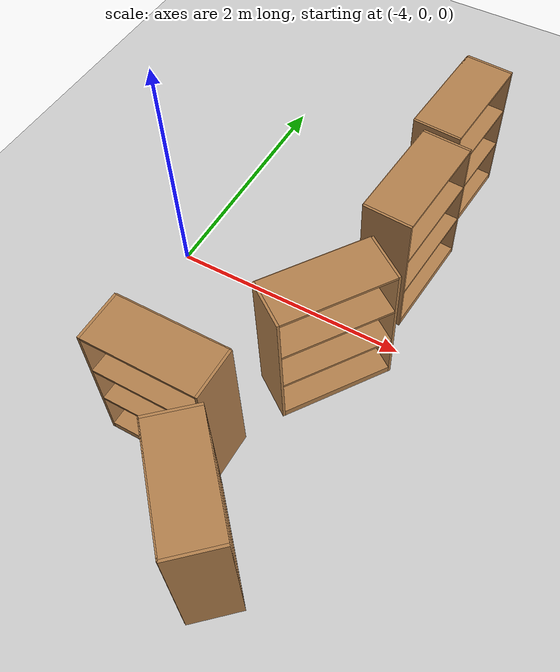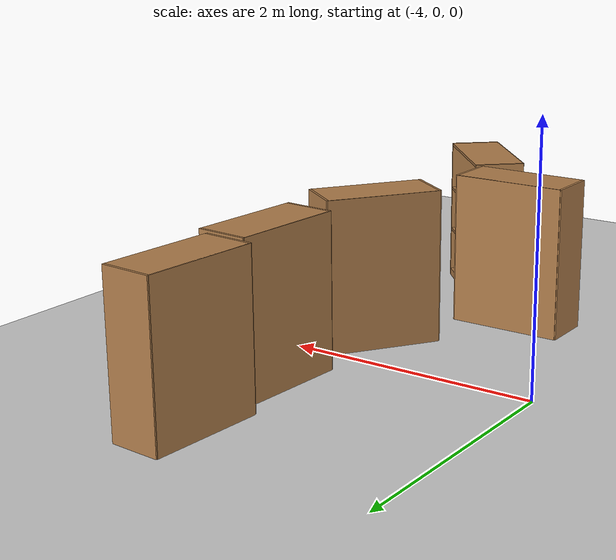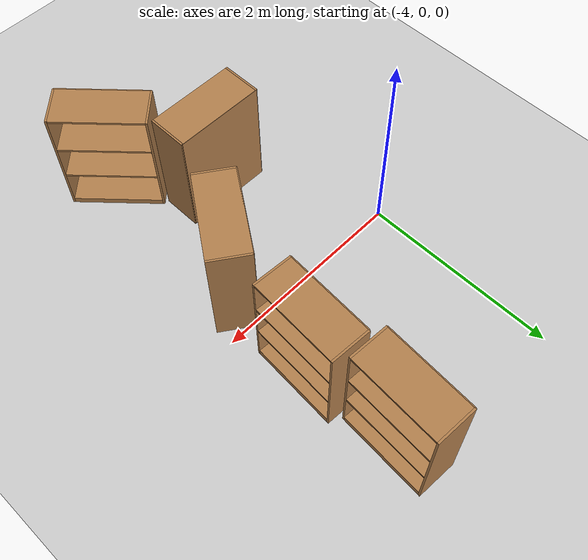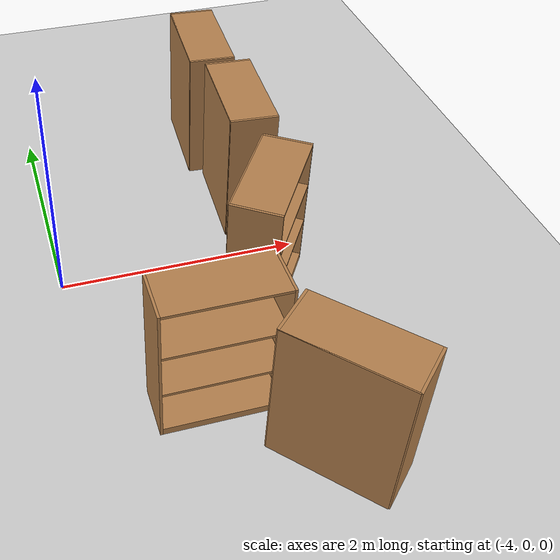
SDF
<sdf version="1.7">
 <world name="default">
  <model name="ground_plane">
   <static>1</static>
   <link name="link">
    <collision name="collision">
     <geometry><plane><normal>0 0 1</normal><size>100 100</size></plane></geometry>
     <surface>
      <contact><collide_bitmask>65535</collide_bitmask></contact>
      <friction><ode><mu>100</mu><mu2>50</mu2></ode></friction>
     </surface>
    </collision>
    <visual name="visual">
     <cast_shadows>0</cast_shadows>
     <geometry><plane><normal>0 0 1</normal><size>100 100</size></plane></geometry>
     <material>
      <script><uri>file://media/materials/scripts/gazebo.material</uri><name>Gazebo/Grey</name></script>
     </material>
    </visual>
   </link>
  </model>
  <model name="bookshelf_3">
   <static>1</static>
   <link name="link">
    <inertial><mass>1</mass></inertial>
    <collision name="back">
     <pose>0 0.005 0.6 0 -0 0</pose>
     <geometry><box><size>0.9 0.01 1.2</size></box></geometry>
    </collision>
    <visual name="visual1">
     <pose>0 0.005 0.6 0 -0 0</pose>
     <geometry><box><size>0.9 0.01 1.2</size></box></geometry>
     <material>
      <script><uri>file://media/materials/scripts/gazebo.material</uri><name>Gazebo/Wood</name></script>
     </material>
    </visual>
    <collision name="left_side">
     <pose>0.45 -0.195 0.6 0 -0 0</pose>
     <geometry><box><size>0.02 0.4 1.2</size></box></geometry>
    </collision>
    <visual name="visual2">
     <pose>0.45 -0.195 0.6 0 -0 0</pose>
     <geometry><box><size>0.02 0.4 1.2</size></box></geometry>
     <material>
      <script><uri>file://media/materials/scripts/gazebo.material</uri><name>Gazebo/Wood</name></script>
     </material>
    </visual>
    <collision name="right_side">
     <pose>-0.45 -0.195 0.6 0 -0 0</pose>
     <geometry><box><size>0.02 0.4 1.2</size></box></geometry>
    </collision>
    <visual name="visual3">
     <pose>-0.45 -0.195 0.6 0 -0 0</pose>
     <geometry><box><size>0.02 0.4 1.2</size></box></geometry>
     <material>
      <script><uri>file://media/materials/scripts/gazebo.material</uri><name>Gazebo/Wood</name></script>
     </material>
    </visual>
    <collision name="bottom">
     <pose>0 -0.195 0.03 0 -0 0</pose>
     <geometry><box><size>0.88 0.4 0.06</size></box></geometry>
    </collision>
    <visual name="visual4">
     <pose>0 -0.195 0.03 0 -0 0</pose>
     <geometry><box><size>0.88 0.4 0.06</size></box></geometry>
     <material>
      <script><uri>file://media/materials/scripts/gazebo.material</uri><name>Gazebo/Wood</name></script>
     </material>
    </visual>
    <collision name="top">
     <pose>0 -0.195 1.19 0 -0 0</pose>
     <geometry><box><size>0.88 0.4 0.02</size></box></geometry>
    </collision>
    <visual name="visual5">
     <pose>0 -0.195 1.19 0 -0 0</pose>
     <geometry><box><size>0.88 0.4 0.02</size></box></geometry>
     <material>
      <script><uri>file://media/materials/scripts/gazebo.material</uri><name>Gazebo/Wood</name></script>
     </material>
    </visual>
    <collision name="low_shelf">
     <pose>0 -0.195 0.43 0 -0 0</pose>
     <geometry><box><size>0.88 0.4 0.02</size></box></geometry>
    </collision>
    <visual name="visual6">
     <pose>0 -0.195 0.43 0 -0 0</pose>
     <geometry><box><size>0.88 0.4 0.02</size></box></geometry>
     <material>
      <script><uri>file://media/materials/scripts/gazebo.material</uri><name>Gazebo/Wood</name></script>
     </material>
    </visual>
    <collision name="high_shelf">
     <pose>0 -0.195 0.8 0 -0 0</pose>
     <geometry><box><size>0.88 0.4 0.02</size></box></geometry>
    </collision>
    <visual name="visual7">
     <pose>0 -0.195 0.8 0 -0 0</pose>
     <geometry><box><size>0.88 0.4 0.02</size></box></geometry>
     <material>
      <script><uri>file://media/materials/scripts/gazebo.material</uri><name>Gazebo/Wood</name></script>
     </material>
    </visual>
   </link>
   <pose>-2.52593 1.69276 0 0 -0 1.50582</pose>
  </model>
  <model name="bookshelf_4">
   <static>1</static>
   <link name="link">
    <inertial><mass>1</mass></inertial>
    <collision name="back">
     <pose>0 0.005 0.6 0 -0 0</pose>
     <geometry><box><size>0.9 0.01 1.2</size></box></geometry>
    </collision>
    <visual name="visual1">
     <pose>0 0.005 0.6 0 -0 0</pose>
     <geometry><box><size>0.9 0.01 1.2</size></box></geometry>
     <material>
      <script><uri>file://media/materials/scripts/gazebo.material</uri><name>Gazebo/Wood</name></script>
     </material>
    </visual>
    <collision name="left_side">
     <pose>0.45 -0.195 0.6 0 -0 0</pose>
     <geometry><box><size>0.02 0.4 1.2</size></box></geometry>
    </collision>
    <visual name="visual2">
     <pose>0.45 -0.195 0.6 0 -0 0</pose>
     <geometry><box><size>0.02 0.4 1.2</size></box></geometry>
     <material>
      <script><uri>file://media/materials/scripts/gazebo.material</uri><name>Gazebo/Wood</name></script>
     </material>
    </visual>
    <collision name="right_side">
     <pose>-0.45 -0.195 0.6 0 -0 0</pose>
     <geometry><box><size>0.02 0.4 1.2</size></box></geometry>
    </collision>
    <visual name="visual3">
     <pose>-0.45 -0.195 0.6 0 -0 0</pose>
     <geometry><box><size>0.02 0.4 1.2</size></box></geometry>
     <material>
      <script><uri>file://media/materials/scripts/gazebo.material</uri><name>Gazebo/Wood</name></script>
     </material>
    </visual>
    <collision name="bottom">
     <pose>0 -0.195 0.03 0 -0 0</pose>
     <geometry><box><size>0.88 0.4 0.06</size></box></geometry>
    </collision>
    <visual name="visual4">
     <pose>0 -0.195 0.03 0 -0 0</pose>
     <geometry><box><size>0.88 0.4 0.06</size></box></geometry>
     <material>
      <script><uri>file://media/materials/scripts/gazebo.material</uri><name>Gazebo/Wood</name></script>
     </material>
    </visual>
    <collision name="top">
     <pose>0 -0.195 1.19 0 -0 0</pose>
     <geometry><box><size>0.88 0.4 0.02</size></box></geometry>
    </collision>
    <visual name="visual5">
     <pose>0 -0.195 1.19 0 -0 0</pose>
     <geometry><box><size>0.88 0.4 0.02</size></box></geometry>
     <material>
      <script><uri>file://media/materials/scripts/gazebo.material</uri><name>Gazebo/Wood</name></script>
     </material>
    </visual>
    <collision name="low_shelf">
     <pose>0 -0.195 0.43 0 -0 0</pose>
     <geometry><box><size>0.88 0.4 0.02</size></box></geometry>
    </collision>
    <visual name="visual6">
     <pose>0 -0.195 0.43 0 -0 0</pose>
     <geometry><box><size>0.88 0.4 0.02</size></box></geometry>
     <material>
      <script><uri>file://media/materials/scripts/gazebo.material</uri><name>Gazebo/Wood</name></script>
     </material>
    </visual>
    <collision name="high_shelf">
     <pose>0 -0.195 0.8 0 -0 0</pose>
     <geometry><box><size>0.88 0.4 0.02</size></box></geometry>
    </collision>
    <visual name="visual7">
     <pose>0 -0.195 0.8 0 -0 0</pose>
     <geometry><box><size>0.88 0.4 0.02</size></box></geometry>
     <material>
      <script><uri>file://media/materials/scripts/gazebo.material</uri><name>Gazebo/Wood</name></script>
     </material>
    </visual>
   </link>
   <pose>-2.46567 0.720951 0 0 -0 1.50711</pose>
  </model>
  <model name="bookshelf_5">
   <static>1</static>
   <link name="link">
    <inertial><mass>1</mass></inertial>
    <collision name="back">
     <pose>0 0.005 0.6 0 -0 0</pose>
     <geometry><box><size>0.9 0.01 1.2</size></box></geometry>
    </collision>
    <visual name="visual1">
     <pose>0 0.005 0.6 0 -0 0</pose>
     <geometry><box><size>0.9 0.01 1.2</size></box></geometry>
     <material>
      <script><uri>file://media/materials/scripts/gazebo.material</uri><name>Gazebo/Wood</name></script>
     </material>
    </visual>
    <collision name="left_side">
     <pose>0.45 -0.195 0.6 0 -0 0</pose>
     <geometry><box><size>0.02 0.4 1.2</size></box></geometry>
    </collision>
    <visual name="visual2">
     <pose>0.45 -0.195 0.6 0 -0 0</pose>
     <geometry><box><size>0.02 0.4 1.2</size></box></geometry>
     <material>
      <script><uri>file://media/materials/scripts/gazebo.material</uri><name>Gazebo/Wood</name></script>
     </material>
    </visual>
    <collision name="right_side">
     <pose>-0.45 -0.195 0.6 0 -0 0</pose>
     <geometry><box><size>0.02 0.4 1.2</size></box></geometry>
    </collision>
    <visual name="visual3">
     <pose>-0.45 -0.195 0.6 0 -0 0</pose>
     <geometry><box><size>0.02 0.4 1.2</size></box></geometry>
     <material>
      <script><uri>file://media/materials/scripts/gazebo.material</uri><name>Gazebo/Wood</name></script>
     </material>
    </visual>
    <collision name="bottom">
     <pose>0 -0.195 0.03 0 -0 0</pose>
     <geometry><box><size>0.88 0.4 0.06</size></box></geometry>
    </collision>
    <visual name="visual4">
     <pose>0 -0.195 0.03 0 -0 0</pose>
     <geometry><box><size>0.88 0.4 0.06</size></box></geometry>
     <material>
      <script><uri>file://media/materials/scripts/gazebo.material</uri><name>Gazebo/Wood</name></script>
     </material>
    </visual>
    <collision name="top">
     <pose>0 -0.195 1.19 0 -0 0</pose>
     <geometry><box><size>0.88 0.4 0.02</size></box></geometry>
    </collision>
    <visual name="visual5">
     <pose>0 -0.195 1.19 0 -0 0</pose>
     <geometry><box><size>0.88 0.4 0.02</size></box></geometry>
     <material>
      <script><uri>file://media/materials/scripts/gazebo.material</uri><name>Gazebo/Wood</name></script>
     </material>
    </visual>
    <collision name="low_shelf">
     <pose>0 -0.195 0.43 0 -0 0</pose>
     <geometry><box><size>0.88 0.4 0.02</size></box></geometry>
    </collision>
    <visual name="visual6">
     <pose>0 -0.195 0.43 0 -0 0</pose>
     <geometry><box><size>0.88 0.4 0.02</size></box></geometry>
     <material>
      <script><uri>file://media/materials/scripts/gazebo.material</uri><name>Gazebo/Wood</name></script>
     </material>
    </visual>
    <collision name="high_shelf">
     <pose>0 -0.195 0.8 0 -0 0</pose>
     <geometry><box><size>0.88 0.4 0.02</size></box></geometry>
    </collision>
    <visual name="visual7">
     <pose>0 -0.195 0.8 0 -0 0</pose>
     <geometry><box><size>0.88 0.4 0.02</size></box></geometry>
     <material>
      <script><uri>file://media/materials/scripts/gazebo.material</uri><name>Gazebo/Wood</name></script>
     </material>
    </visual>
   </link>
   <pose>-2.56119 -0.330617 0 0 -0 0.965045</pose>
  </model>
  <model name="bookshelf_6">
   <static>1</static>
   <link name="link">
    <inertial><mass>1</mass></inertial>
    <collision name="back">
     <pose>0 0.005 0.6 0 -0 0</pose>
     <geometry><box><size>0.9 0.01 1.2</size></box></geometry>
    </collision>
    <visual name="visual1">
     <pose>0 0.005 0.6 0 -0 0</pose>
     <geometry><box><size>0.9 0.01 1.2</size></box></geometry>
     <material>
      <script><uri>file://media/materials/scripts/gazebo.material</uri><name>Gazebo/Wood</name></script>
     </material>
    </visual>
    <collision name="left_side">
     <pose>0.45 -0.195 0.6 0 -0 0</pose>
     <geometry><box><size>0.02 0.4 1.2</size></box></geometry>
    </collision>
    <visual name="visual2">
     <pose>0.45 -0.195 0.6 0 -0 0</pose>
     <geometry><box><size>0.02 0.4 1.2</size></box></geometry>
     <material>
      <script><uri>file://media/materials/scripts/gazebo.material</uri><name>Gazebo/Wood</name></script>
     </material>
    </visual>
    <collision name="right_side">
     <pose>-0.45 -0.195 0.6 0 -0 0</pose>
     <geometry><box><size>0.02 0.4 1.2</size></box></geometry>
    </collision>
    <visual name="visual3">
     <pose>-0.45 -0.195 0.6 0 -0 0</pose>
     <geometry><box><size>0.02 0.4 1.2</size></box></geometry>
     <material>
      <script><uri>file://media/materials/scripts/gazebo.material</uri><name>Gazebo/Wood</name></script>
     </material>
    </visual>
    <collision name="bottom">
     <pose>0 -0.195 0.03 0 -0 0</pose>
     <geometry><box><size>0.88 0.4 0.06</size></box></geometry>
    </collision>
    <visual name="visual4">
     <pose>0 -0.195 0.03 0 -0 0</pose>
     <geometry><box><size>0.88 0.4 0.06</size></box></geometry>
     <material>
      <script><uri>file://media/materials/scripts/gazebo.material</uri><name>Gazebo/Wood</name></script>
     </material>
    </visual>
    <collision name="top">
     <pose>0 -0.195 1.19 0 -0 0</pose>
     <geometry><box><size>0.88 0.4 0.02</size></box></geometry>
    </collision>
    <visual name="visual5">
     <pose>0 -0.195 1.19 0 -0 0</pose>
     <geometry><box><size>0.88 0.4 0.02</size></box></geometry>
     <material>
      <script><uri>file://media/materials/scripts/gazebo.material</uri><name>Gazebo/Wood</name></script>
     </material>
    </visual>
    <collision name="low_shelf">
     <pose>0 -0.195 0.43 0 -0 0</pose>
     <geometry><box><size>0.88 0.4 0.02</size></box></geometry>
    </collision>
    <visual name="visual6">
     <pose>0 -0.195 0.43 0 -0 0</pose>
     <geometry><box><size>0.88 0.4 0.02</size></box></geometry>
     <material>
      <script><uri>file://media/materials/scripts/gazebo.material</uri><name>Gazebo/Wood</name></script>
     </material>
    </visual>
    <collision name="high_shelf">
     <pose>0 -0.195 0.8 0 -0 0</pose>
     <geometry><box><size>0.88 0.4 0.02</size></box></geometry>
    </collision>
    <visual name="visual7">
     <pose>0 -0.195 0.8 0 -0 0</pose>
     <geometry><box><size>0.88 0.4 0.02</size></box></geometry>
     <material>
      <script><uri>file://media/materials/scripts/gazebo.material</uri><name>Gazebo/Wood</name></script>
     </material>
    </visual>
   </link>
   <pose>-2.58274 -2.22208 0 0 -0 2.31465</pose>
  </model>
  <model name="bookshelf_7">
   <static>1</static>
   <link name="link">
    <inertial><mass>1</mass></inertial>
    <collision name="back">
     <pose>0 0.005 0.6 0 -0 0</pose>
     <geometry><box><size>0.9 0.01 1.2</size></box></geometry>
    </collision>
    <visual name="visual1">
     <pose>0 0.005 0.6 0 -0 0</pose>
     <geometry><box><size>0.9 0.01 1.2</size></box></geometry>
     <material>
      <script><uri>file://media/materials/scripts/gazebo.material</uri><name>Gazebo/Wood</name></script>
     </material>
    </visual>
    <collision name="left_side">
     <pose>0.45 -0.195 0.6 0 -0 0</pose>
     <geometry><box><size>0.02 0.4 1.2</size></box></geometry>
    </collision>
    <visual name="visual2">
     <pose>0.45 -0.195 0.6 0 -0 0</pose>
     <geometry><box><size>0.02 0.4 1.2</size></box></geometry>
     <material>
      <script><uri>file://media/materials/scripts/gazebo.material</uri><name>Gazebo/Wood</name></script>
     </material>
    </visual>
    <collision name="right_side">
     <pose>-0.45 -0.195 0.6 0 -0 0</pose>
     <geometry><box><size>0.02 0.4 1.2</size></box></geometry>
    </collision>
    <visual name="visual3">
     <pose>-0.45 -0.195 0.6 0 -0 0</pose>
     <geometry><box><size>0.02 0.4 1.2</size></box></geometry>
     <material>
      <script><uri>file://media/materials/scripts/gazebo.material</uri><name>Gazebo/Wood</name></script>
     </material>
    </visual>
    <collision name="bottom">
     <pose>0 -0.195 0.03 0 -0 0</pose>
     <geometry><box><size>0.88 0.4 0.06</size></box></geometry>
    </collision>
    <visual name="visual4">
     <pose>0 -0.195 0.03 0 -0 0</pose>
     <geometry><box><size>0.88 0.4 0.06</size></box></geometry>
     <material>
      <script><uri>file://media/materials/scripts/gazebo.material</uri><name>Gazebo/Wood</name></script>
     </material>
    </visual>
    <collision name="top">
     <pose>0 -0.195 1.19 0 -0 0</pose>
     <geometry><box><size>0.88 0.4 0.02</size></box></geometry>
    </collision>
    <visual name="visual5">
     <pose>0 -0.195 1.19 0 -0 0</pose>
     <geometry><box><size>0.88 0.4 0.02</size></box></geometry>
     <material>
      <script><uri>file://media/materials/scripts/gazebo.material</uri><name>Gazebo/Wood</name></script>
     </material>
    </visual>
    <collision name="low_shelf">
     <pose>0 -0.195 0.43 0 -0 0</pose>
     <geometry><box><size>0.88 0.4 0.02</size></box></geometry>
    </collision>
    <visual name="visual6">
     <pose>0 -0.195 0.43 0 -0 0</pose>
     <geometry><box><size>0.88 0.4 0.02</size></box></geometry>
     <material>
      <script><uri>file://media/materials/scripts/gazebo.material</uri><name>Gazebo/Wood</name></script>
     </material>
    </visual>
    <collision name="high_shelf">
     <pose>0 -0.195 0.8 0 -0 0</pose>
     <geometry><box><size>0.88 0.4 0.02</size></box></geometry>
    </collision>
    <visual name="visual7">
     <pose>0 -0.195 0.8 0 -0 0</pose>
     <geometry><box><size>0.88 0.4 0.02</size></box></geometry>
     <material>
      <script><uri>file://media/materials/scripts/gazebo.material</uri><name>Gazebo/Wood</name></script>
     </material>
    </visual>
   </link>
   <pose>-3.11173 -1.2219 0 0 -0 0</pose>
  </model>
 </world>
</sdf>
